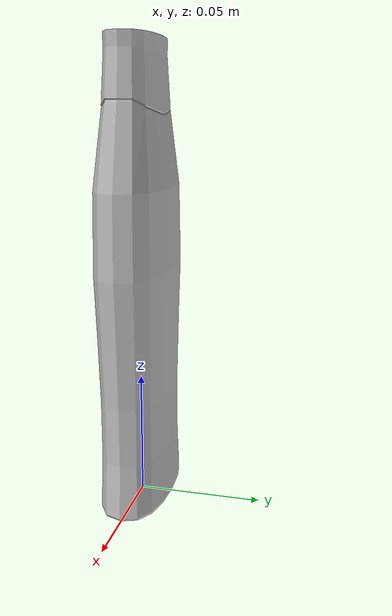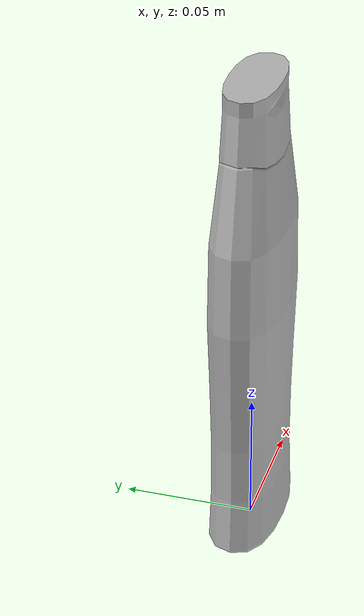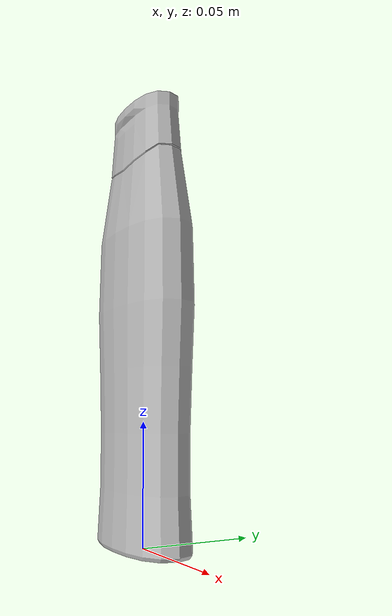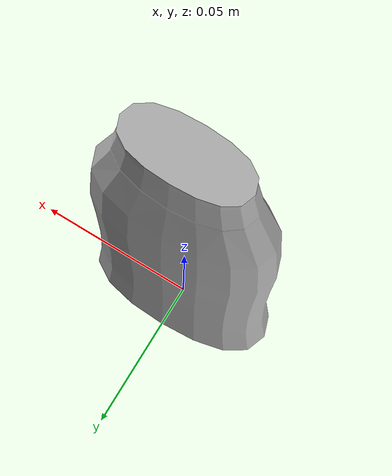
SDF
<?xml version='1.0'?>
<sdf version="1.4">
	<model name="shampoo">
		<static>1</static>
		<link name="link">
			<visual name="mesh">
				<geometry>
					<mesh>
						<uri>model://meshes/shampoo.dae</uri>
					</mesh>
				</geometry>
			</visual>
			<collision name="collider">
				<pose>0 0 0.0925 0 0 0</pose>
				<geometry>
					<cylinder>
						<radius>0.03</radius>
						<length>0.185</length>
					</cylinder>
				</geometry>
			</collision>
		</link>
	</model>
</sdf>
